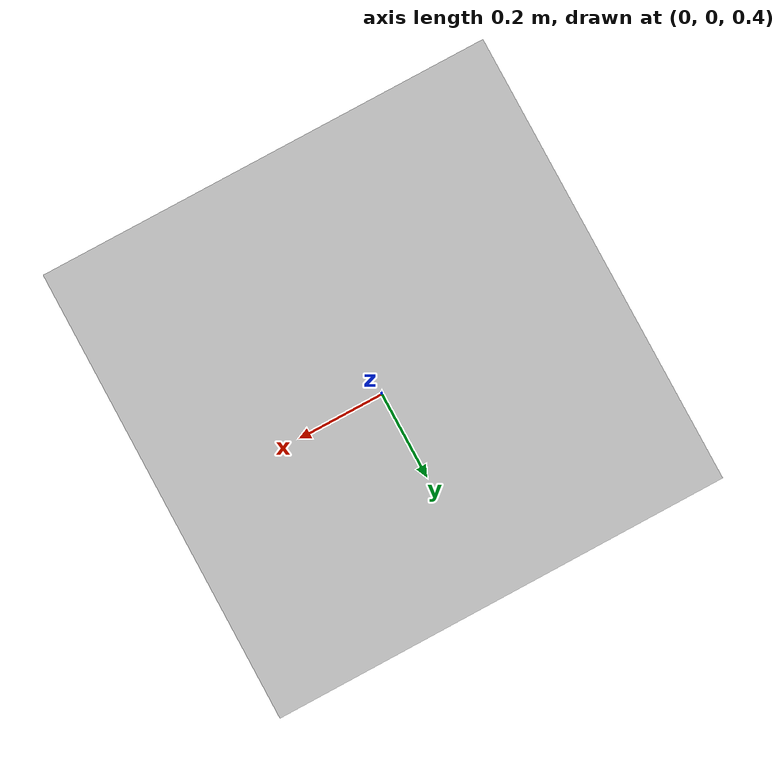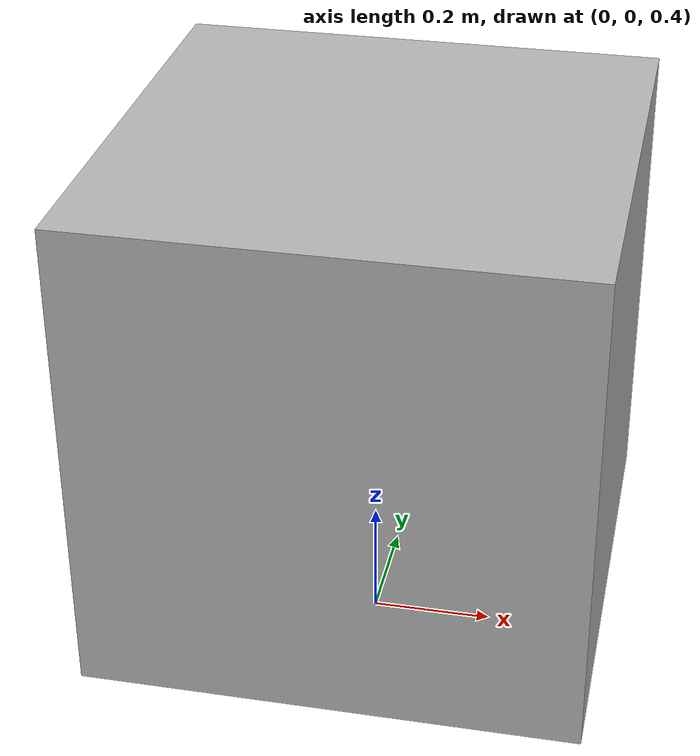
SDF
<?xml version="1.0" ?>
<sdf version="1.5">
  <model name="number3">
    <pose>0 0 0.9 0 0 0</pose>
    <static>true</static>
    <link name="link">
      <visual name="visual">
        <geometry>
          <mesh>
            <uri>model://number1/meshes/number.dae</uri>
          </mesh>
        </geometry>
        <material>
          <script>
            <uri>model://number3/materials/scripts</uri>
            <uri>model://number3/materials/textures</uri>
            <name>Number/Three</name>
          </script>
        </material>
      </visual>
    </link>
  </model>
</sdf>
